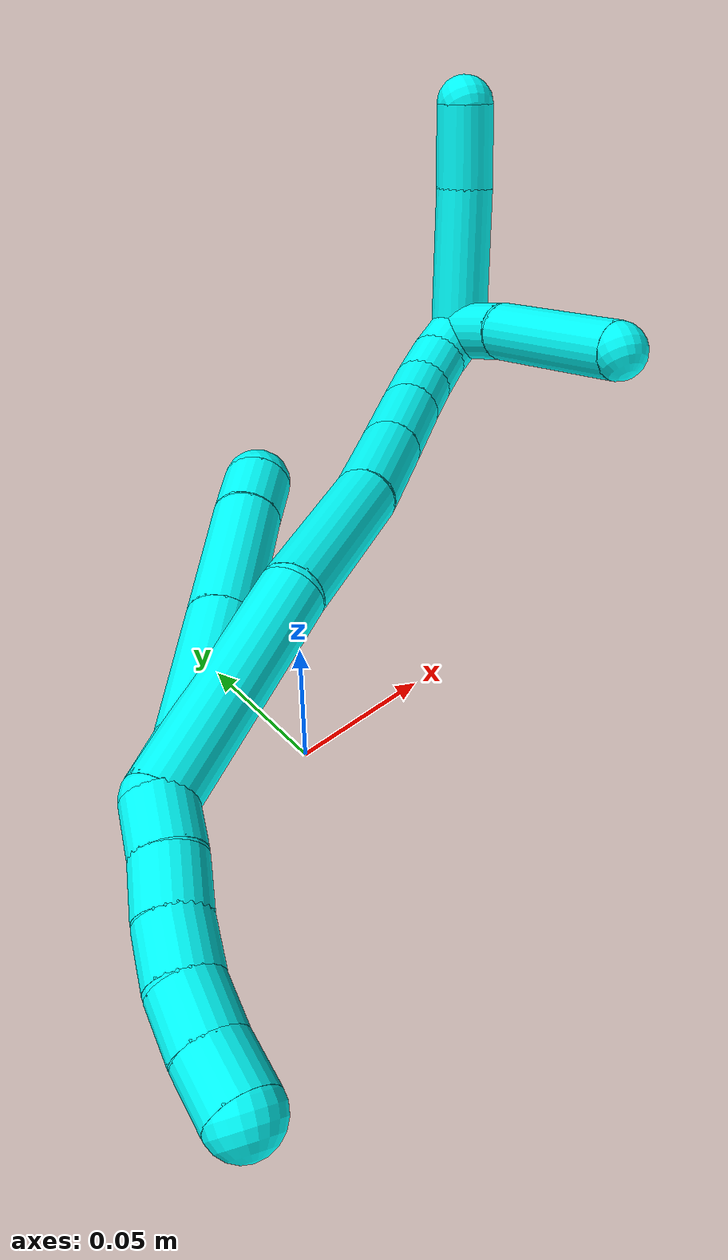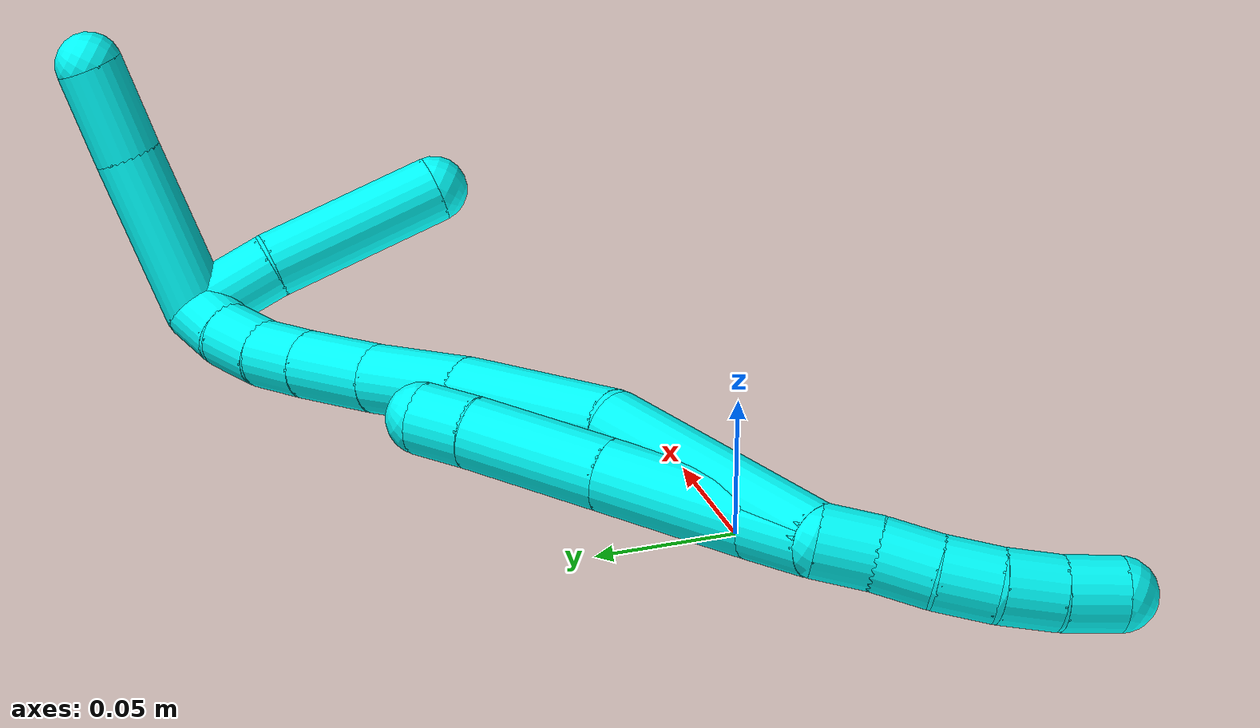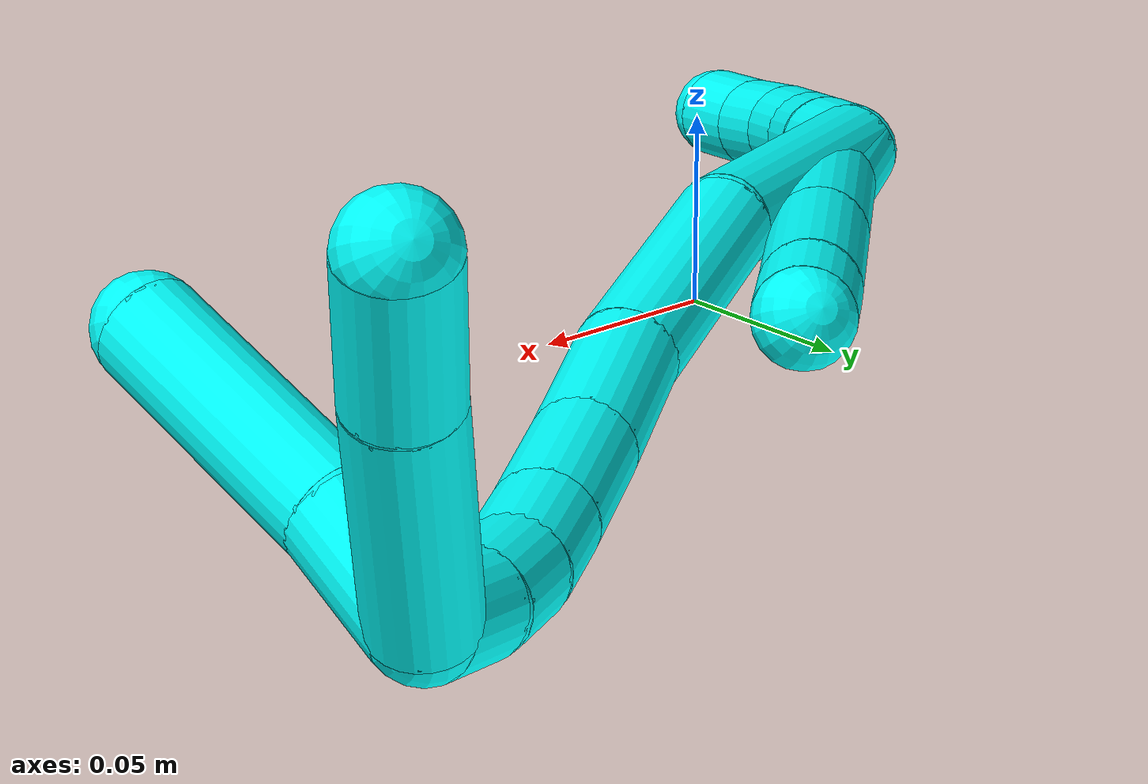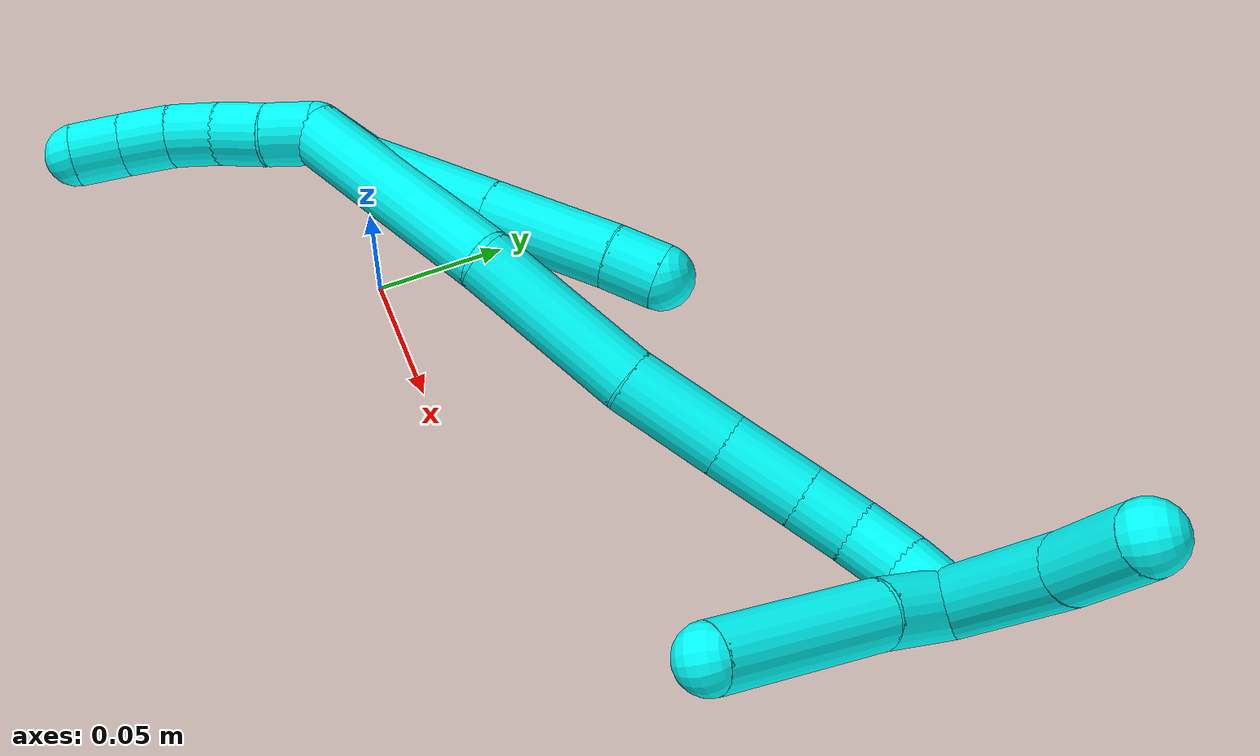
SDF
<sdf version="1.7">
 <world name="default">
  <model name="photoneo_s_sensor">
   <static>1</static>
   <pose>0 0 2 1.57079 1.57079 3.14159</pose>
   <link name="link">
    <inertial><mass>0.1</mass></inertial>
    <sensor name="sensor" type="depth">
     <update_rate>30</update_rate>
     <camera>
      <horizontal_fov>1.22</horizontal_fov>
      <image><width>1920</width><height>1200</height><format>B8G8R8</format></image>
      <clip><near>0.1</near><far>4</far></clip>
      <depth_camera><output>points</output></depth_camera>
     </camera>
     <plugin name="camera_plugin" filename="libgazebo_ros_depth_camera.so">
      <baseline>0.2</baseline>
      <alwaysOn>1</alwaysOn>
      <updateRate>0.0</updateRate>
      <cameraName>camera_ir</cameraName>
      <imageTopicName>/camera/color/image_raw</imageTopicName>
      <cameraInfoTopicName>/camera/color/camera_info</cameraInfoTopicName>
      <depthImageTopicName>/camera/depth/image_raw</depthImageTopicName>
      <depthImageCameraInfoTopicName>/camera/depth/camera_info</depthImageCameraInfoTopicName>
      <pointCloudTopicName>/camera/depth/points</pointCloudTopicName>
      <frameName>fr_optical</frameName>
      <pointCloudCutoff>0.1</pointCloudCutoff>
      <pointCloudCutoffMax>2.0</pointCloudCutoffMax>
      <distortionK1>0</distortionK1>
      <distortionK2>0</distortionK2>
      <distortionK3>0</distortionK3>
      <distortionT1>0</distortionT1>
      <distortionT2>0</distortionT2>
      <CxPrime>0</CxPrime>
      <Cx>0</Cx>
      <Cy>0</Cy>
      <focalLength>0</focalLength>
      <hackBaseline>0</hackBaseline>
     </plugin>
    </sensor>
   </link>
  </model>
  <model name="bin">
   <static>1</static>
   <link name="bottom">
    <collision name="collision-bottom">
     <pose>0 0 -0.01 0 -0 0</pose>
     <geometry><box><size>0.8 0.6 0.02</size></box></geometry>
     <surface>
      <friction><ode><mu>100</mu><mu2>100</mu2></ode></friction>
      <contact><collide_bitmask>65535</collide_bitmask></contact>
     </surface>
    </collision>
   </link>
   <link name="west_wall">
    <collision name="collision-west_wall">
     <pose>-0.41 0 0.1 0 -0 0</pose>
     <geometry><box><size>0.02 0.6 0.2</size></box></geometry>
     <surface>
      <friction><ode><mu>100</mu><mu2>100</mu2></ode></friction>
      <contact><collide_bitmask>65535</collide_bitmask></contact>
     </surface>
    </collision>
   </link>
   <link name="east_wall">
    <collision name="collision-east_wall">
     <pose>0.41 0 0.1 0 -0 0</pose>
     <geometry><box><size>0.02 0.6 0.2</size></box></geometry>
     <surface>
      <friction><ode><mu>100</mu><mu2>100</mu2></ode></friction>
      <contact><collide_bitmask>65535</collide_bitmask></contact>
     </surface>
    </collision>
   </link>
   <link name="south_wall">
    <collision name="collision-south_wall">
     <pose>0 -0.31 0.1 0 -0 0</pose>
     <geometry><box><size>0.8 0.02 0.2</size></box></geometry>
     <surface>
      <friction><ode><mu>100</mu><mu2>100</mu2></ode></friction>
      <contact><collide_bitmask>65535</collide_bitmask></contact>
     </surface>
    </collision>
   </link>
   <link name="north_wall">
    <collision name="collision-north_wall">
     <pose>0 0.31 0.1 0 -0 0</pose>
     <geometry><box><size>0.8 0.02 0.2</size></box></geometry>
     <surface>
      <friction><ode><mu>100</mu><mu2>100</mu2></ode></friction>
      <contact><collide_bitmask>65535</collide_bitmask></contact>
     </surface>
    </collision>
   </link>
  </model>
  <model name="3">
   <static>0</static>
   <link name="3">
    <collision name="collision-cylinder-e_1_2_8">
     <pose>0.008022 0.004103 0.008163 -0.46577 0.720587 -0.178243</pose>
     <geometry><cylinder><radius>0.0125</radius><length>0.024316</length></cylinder></geometry>
     <surface>
      <friction><ode><mu>1.16</mu><mu2>1.16</mu2><slip1>0</slip1><slip2>0</slip2></ode></friction>
      <contact><ode><kp>1e+06</kp><kd>1</kd><max_vel>0</max_vel><min_depth>0.001</min_depth></ode></contact>
     </surface>
    </collision>
    <visual name="visual-cylinder-e_1_2_8">
     <pose>0.008022 0.004103 0.008163 -0.46577 0.720587 -0.178243</pose>
     <geometry><cylinder><radius>0.0125</radius><length>0.024316</length></cylinder></geometry>
     <material><ambient>0.003922 1 0.996078 1</ambient></material>
    </visual>
    <collision name="collision-cylinder-e_2_8_9">
     <pose>0.02905 0.016078 0.038981 -0.334426 0.49686 -0.085581</pose>
     <geometry><cylinder><radius>0.0125</radius><length>0.054566</length></cylinder></geometry>
     <surface>
      <friction><ode><mu>1.16</mu><mu2>1.16</mu2><slip1>0</slip1><slip2>0</slip2></ode></friction>
      <contact><ode><kp>1e+06</kp><kd>1</kd><max_vel>0</max_vel><min_depth>0.001</min_depth></ode></contact>
     </surface>
    </collision>
    <visual name="visual-cylinder-e_2_8_9">
     <pose>0.02905 0.016078 0.038981 -0.334426 0.49686 -0.085581</pose>
     <geometry><cylinder><radius>0.0125</radius><length>0.054566</length></cylinder></geometry>
     <material><ambient>0.003922 1 0.996078 1</ambient></material>
    </visual>
    <collision name="collision-cylinder-e_3_9_10">
     <pose>0.05416 0.031321 0.082715 -0.336379 0.49677 -0.086074</pose>
     <geometry><cylinder><radius>0.0125</radius><length>0.050801</length></cylinder></geometry>
     <surface>
      <friction><ode><mu>1.16</mu><mu2>1.16</mu2><slip1>0</slip1><slip2>0</slip2></ode></friction>
      <contact><ode><kp>1e+06</kp><kd>1</kd><max_vel>0</max_vel><min_depth>0.001</min_depth></ode></contact>
     </surface>
    </collision>
    <visual name="visual-cylinder-e_3_9_10">
     <pose>0.05416 0.031321 0.082715 -0.336379 0.49677 -0.086074</pose>
     <geometry><cylinder><radius>0.0125</radius><length>0.050801</length></cylinder></geometry>
     <material><ambient>0.003922 1 0.996078 1</ambient></material>
    </visual>
    <collision name="collision-cylinder-e_4_10_6">
     <pose>0.071382 0.042004 0.11192 -0.386999 0.527828 -0.1058</pose>
     <geometry><cylinder><radius>0.0125</radius><length>0.020316</length></cylinder></geometry>
     <surface>
      <friction><ode><mu>1.16</mu><mu2>1.16</mu2><slip1>0</slip1><slip2>0</slip2></ode></friction>
      <contact><ode><kp>1e+06</kp><kd>1</kd><max_vel>0</max_vel><min_depth>0.001</min_depth></ode></contact>
     </surface>
    </collision>
    <visual name="visual-cylinder-e_4_10_6">
     <pose>0.071382 0.042004 0.11192 -0.386999 0.527828 -0.1058</pose>
     <geometry><cylinder><radius>0.0125</radius><length>0.020316</length></cylinder></geometry>
     <material><ambient>0.003922 1 0.996078 1</ambient></material>
    </visual>
    <collision name="collision-cylinder-e_1_2_11">
     <pose>-0.001263 -0.002961 -0.009468 2.83848 -0.126634 -0.786958</pose>
     <geometry><cylinder><radius>0.0125</radius><length>0.02</length></cylinder></geometry>
     <surface>
      <friction><ode><mu>1.16</mu><mu2>1.16</mu2><slip1>0</slip1><slip2>0</slip2></ode></friction>
      <contact><ode><kp>1e+06</kp><kd>1</kd><max_vel>0</max_vel><min_depth>0.001</min_depth></ode></contact>
     </surface>
    </collision>
    <visual name="visual-cylinder-e_1_2_11">
     <pose>-0.001263 -0.002961 -0.009468 2.83848 -0.126634 -0.786958</pose>
     <geometry><cylinder><radius>0.0125</radius><length>0.02</length></cylinder></geometry>
     <material><ambient>0.003922 1 0.996078 1</ambient></material>
    </visual>
    <collision name="collision-cylinder-e_2_11_12">
     <pose>-0.004647 -0.008272 -0.028421 2.89876 -0.21377 -1.44256</pose>
     <geometry><cylinder><radius>0.0125</radius><length>0.02</length></cylinder></geometry>
     <surface>
      <friction><ode><mu>1.16</mu><mu2>1.16</mu2><slip1>0</slip1><slip2>0</slip2></ode></friction>
      <contact><ode><kp>1e+06</kp><kd>1</kd><max_vel>0</max_vel><min_depth>0.001</min_depth></ode></contact>
     </surface>
    </collision>
    <visual name="visual-cylinder-e_2_11_12">
     <pose>-0.004647 -0.008272 -0.028421 2.89876 -0.21377 -1.44256</pose>
     <geometry><cylinder><radius>0.0125</radius><length>0.02</length></cylinder></geometry>
     <material><ambient>0.003922 1 0.996078 1</ambient></material>
    </visual>
    <collision name="collision-cylinder-e_3_12_13">
     <pose>-0.00788 -0.013566 -0.047399 2.84083 -0.111374 -0.705051</pose>
     <geometry><cylinder><radius>0.0125</radius><length>0.02</length></cylinder></geometry>
     <surface>
      <friction><ode><mu>1.16</mu><mu2>1.16</mu2><slip1>0</slip1><slip2>0</slip2></ode></friction>
      <contact><ode><kp>1e+06</kp><kd>1</kd><max_vel>0</max_vel><min_depth>0.001</min_depth></ode></contact>
     </surface>
    </collision>
    <visual name="visual-cylinder-e_3_12_13">
     <pose>-0.00788 -0.013566 -0.047399 2.84083 -0.111374 -0.705051</pose>
     <geometry><cylinder><radius>0.0125</radius><length>0.02</length></cylinder></geometry>
     <material><ambient>0.003922 1 0.996078 1</ambient></material>
    </visual>
    <collision name="collision-cylinder-e_4_13_14">
     <pose>-0.008417 -0.019803 -0.066315 2.8054 0.057518 0.335838</pose>
     <geometry><cylinder><radius>0.0125</radius><length>0.02</length></cylinder></geometry>
     <surface>
      <friction><ode><mu>1.16</mu><mu2>1.16</mu2><slip1>0</slip1><slip2>0</slip2></ode></friction>
      <contact><ode><kp>1e+06</kp><kd>1</kd><max_vel>0</max_vel><min_depth>0.001</min_depth></ode></contact>
     </surface>
    </collision>
    <visual name="visual-cylinder-e_4_13_14">
     <pose>-0.008417 -0.019803 -0.066315 2.8054 0.057518 0.335838</pose>
     <geometry><cylinder><radius>0.0125</radius><length>0.02</length></cylinder></geometry>
     <material><ambient>0.003922 1 0.996078 1</ambient></material>
    </visual>
    <collision name="collision-cylinder-e_5_14_5">
     <pose>-0.006522 -0.027184 -0.08477 2.71658 0.132391 0.596181</pose>
     <geometry><cylinder><radius>0.0125</radius><length>0.02</length></cylinder></geometry>
     <surface>
      <friction><ode><mu>1.16</mu><mu2>1.16</mu2><slip1>0</slip1><slip2>0</slip2></ode></friction>
      <contact><ode><kp>1e+06</kp><kd>1</kd><max_vel>0</max_vel><min_depth>0.001</min_depth></ode></contact>
     </surface>
    </collision>
    <visual name="visual-cylinder-e_5_14_5">
     <pose>-0.006522 -0.027184 -0.08477 2.71658 0.132391 0.596181</pose>
     <geometry><cylinder><radius>0.0125</radius><length>0.02</length></cylinder></geometry>
     <material><ambient>0.003922 1 0.996078 1</ambient></material>
    </visual>
    <collision name="collision-cylinder-e_1_2_15">
     <pose>0.032912 0.007093 0.031715 -0.22004 0.791712 -0.092266</pose>
     <geometry><cylinder><radius>0.0125</radius><length>0.092507</length></cylinder></geometry>
     <surface>
      <friction><ode><mu>1.16</mu><mu2>1.16</mu2><slip1>0</slip1><slip2>0</slip2></ode></friction>
      <contact><ode><kp>1e+06</kp><kd>1</kd><max_vel>0</max_vel><min_depth>0.001</min_depth></ode></contact>
     </surface>
    </collision>
    <visual name="visual-cylinder-e_1_2_15">
     <pose>0.032912 0.007093 0.031715 -0.22004 0.791712 -0.092266</pose>
     <geometry><cylinder><radius>0.0125</radius><length>0.092507</length></cylinder></geometry>
     <material><ambient>0.003922 1 0.996078 1</ambient></material>
    </visual>
    <collision name="collision-cylinder-e_2_15_16">
     <pose>0.090485 0.02735 0.084473 -0.55898 0.782181 -0.235584</pose>
     <geometry><cylinder><radius>0.0125</radius><length>0.069978</length></cylinder></geometry>
     <surface>
      <friction><ode><mu>1.16</mu><mu2>1.16</mu2><slip1>0</slip1><slip2>0</slip2></ode></friction>
      <contact><ode><kp>1e+06</kp><kd>1</kd><max_vel>0</max_vel><min_depth>0.001</min_depth></ode></contact>
     </surface>
    </collision>
    <visual name="visual-cylinder-e_2_15_16">
     <pose>0.090485 0.02735 0.084473 -0.55898 0.782181 -0.235584</pose>
     <geometry><cylinder><radius>0.0125</radius><length>0.069978</length></cylinder></geometry>
     <material><ambient>0.003922 1 0.996078 1</ambient></material>
    </visual>
    <collision name="collision-cylinder-e_3_16_17">
     <pose>0.128038 0.049467 0.119134 -0.581645 0.669228 -0.207386</pose>
     <geometry><cylinder><radius>0.0125</radius><length>0.041559</length></cylinder></geometry>
     <surface>
      <friction><ode><mu>1.16</mu><mu2>1.16</mu2><slip1>0</slip1><slip2>0</slip2></ode></friction>
      <contact><ode><kp>1e+06</kp><kd>1</kd><max_vel>0</max_vel><min_depth>0.001</min_depth></ode></contact>
     </surface>
    </collision>
    <visual name="visual-cylinder-e_3_16_17">
     <pose>0.128038 0.049467 0.119134 -0.581645 0.669228 -0.207386</pose>
     <geometry><cylinder><radius>0.0125</radius><length>0.041559</length></cylinder></geometry>
     <material><ambient>0.003922 1 0.996078 1</ambient></material>
    </visual>
    <collision name="collision-cylinder-e_4_17_18">
     <pose>0.15125 0.064908 0.143941 -0.525442 0.673481 -0.187742</pose>
     <geometry><cylinder><radius>0.0125</radius><length>0.033097</length></cylinder></geometry>
     <surface>
      <friction><ode><mu>1.16</mu><mu2>1.16</mu2><slip1>0</slip1><slip2>0</slip2></ode></friction>
      <contact><ode><kp>1e+06</kp><kd>1</kd><max_vel>0</max_vel><min_depth>0.001</min_depth></ode></contact>
     </surface>
    </collision>
    <visual name="visual-cylinder-e_4_17_18">
     <pose>0.15125 0.064908 0.143941 -0.525442 0.673481 -0.187742</pose>
     <geometry><cylinder><radius>0.0125</radius><length>0.033097</length></cylinder></geometry>
     <material><ambient>0.003922 1 0.996078 1</ambient></material>
    </visual>
    <collision name="collision-cylinder-e_5_18_19">
     <pose>0.168515 0.075343 0.162541 -0.489315 0.691011 -0.179244</pose>
     <geometry><cylinder><radius>0.0125</radius><length>0.021789</length></cylinder></geometry>
     <surface>
      <friction><ode><mu>1.16</mu><mu2>1.16</mu2><slip1>0</slip1><slip2>0</slip2></ode></friction>
      <contact><ode><kp>1e+06</kp><kd>1</kd><max_vel>0</max_vel><min_depth>0.001</min_depth></ode></contact>
     </surface>
    </collision>
    <visual name="visual-cylinder-e_5_18_19">
     <pose>0.168515 0.075343 0.162541 -0.489315 0.691011 -0.179244</pose>
     <geometry><cylinder><radius>0.0125</radius><length>0.021789</length></cylinder></geometry>
     <material><ambient>0.003922 1 0.996078 1</ambient></material>
    </visual>
    <collision name="collision-cylinder-e_6_19_20">
     <pose>0.182622 0.081427 0.177207 -0.286684 0.758243 -0.114876</pose>
     <geometry><cylinder><radius>0.0125</radius><length>0.020837</length></cylinder></geometry>
     <surface>
      <friction><ode><mu>1.16</mu><mu2>1.16</mu2><slip1>0</slip1><slip2>0</slip2></ode></friction>
      <contact><ode><kp>1e+06</kp><kd>1</kd><max_vel>0</max_vel><min_depth>0.001</min_depth></ode></contact>
     </surface>
    </collision>
    <visual name="visual-cylinder-e_6_19_20">
     <pose>0.182622 0.081427 0.177207 -0.286684 0.758243 -0.114876</pose>
     <geometry><cylinder><radius>0.0125</radius><length>0.020837</length></cylinder></geometry>
     <material><ambient>0.003922 1 0.996078 1</ambient></material>
    </visual>
    <collision name="collision-cylinder-e_7_20_1">
     <pose>0.197413 0.083942 0.191099 -0.056513 0.853972 -0.025718</pose>
     <geometry><cylinder><radius>0.0125</radius><length>0.020234</length></cylinder></geometry>
     <surface>
      <friction><ode><mu>1.16</mu><mu2>1.16</mu2><slip1>0</slip1><slip2>0</slip2></ode></friction>
      <contact><ode><kp>1e+06</kp><kd>1</kd><max_vel>0</max_vel><min_depth>0.001</min_depth></ode></contact>
     </surface>
    </collision>
    <visual name="visual-cylinder-e_7_20_1">
     <pose>0.197413 0.083942 0.191099 -0.056513 0.853972 -0.025718</pose>
     <geometry><cylinder><radius>0.0125</radius><length>0.020234</length></cylinder></geometry>
     <material><ambient>0.003922 1 0.996078 1</ambient></material>
    </visual>
    <collision name="collision-cylinder-e_1_1_21">
     <pose>0.206721 0.06442 0.222402 0.678761 0.052966 0.018703</pose>
     <geometry><cylinder><radius>0.0125</radius><length>0.063472</length></cylinder></geometry>
     <surface>
      <friction><ode><mu>1.16</mu><mu2>1.16</mu2><slip1>0</slip1><slip2>0</slip2></ode></friction>
      <contact><ode><kp>1e+06</kp><kd>1</kd><max_vel>0</max_vel><min_depth>0.001</min_depth></ode></contact>
     </surface>
    </collision>
    <visual name="visual-cylinder-e_1_1_21">
     <pose>0.206721 0.06442 0.222402 0.678761 0.052966 0.018703</pose>
     <geometry><cylinder><radius>0.0125</radius><length>0.063472</length></cylinder></geometry>
     <material><ambient>0.003922 1 0.996078 1</ambient></material>
    </visual>
    <collision name="collision-cylinder-e_2_21_4">
     <pose>0.208443 0.032685 0.260977 0.70523 0.002308 0.000849</pose>
     <geometry><cylinder><radius>0.0125</radius><length>0.036528</length></cylinder></geometry>
     <surface>
      <friction><ode><mu>1.16</mu><mu2>1.16</mu2><slip1>0</slip1><slip2>0</slip2></ode></friction>
      <contact><ode><kp>1e+06</kp><kd>1</kd><max_vel>0</max_vel><min_depth>0.001</min_depth></ode></contact>
     </surface>
    </collision>
    <visual name="visual-cylinder-e_2_21_4">
     <pose>0.208443 0.032685 0.260977 0.70523 0.002308 0.000849</pose>
     <geometry><cylinder><radius>0.0125</radius><length>0.036528</length></cylinder></geometry>
     <material><ambient>0.003922 1 0.996078 1</ambient></material>
    </visual>
    <collision name="collision-cylinder-e_1_1_22">
     <pose>0.207721 0.0709 0.189125 2.14134 0.166608 0.303244</pose>
     <geometry><cylinder><radius>0.0125</radius><length>0.032332</length></cylinder></geometry>
     <surface>
      <friction><ode><mu>1.16</mu><mu2>1.16</mu2><slip1>0</slip1><slip2>0</slip2></ode></friction>
      <contact><ode><kp>1e+06</kp><kd>1</kd><max_vel>0</max_vel><min_depth>0.001</min_depth></ode></contact>
     </surface>
    </collision>
    <visual name="visual-cylinder-e_1_1_22">
     <pose>0.207721 0.0709 0.189125 2.14134 0.166608 0.303244</pose>
     <geometry><cylinder><radius>0.0125</radius><length>0.032332</length></cylinder></geometry>
     <material><ambient>0.003922 1 0.996078 1</ambient></material>
    </visual>
    <collision name="collision-cylinder-e_2_22_3">
     <pose>0.218319 0.031885 0.159855 2.24985 0.236172 0.486587</pose>
     <geometry><cylinder><radius>0.0125</radius><length>0.067668</length></cylinder></geometry>
     <surface>
      <friction><ode><mu>1.16</mu><mu2>1.16</mu2><slip1>0</slip1><slip2>0</slip2></ode></friction>
      <contact><ode><kp>1e+06</kp><kd>1</kd><max_vel>0</max_vel><min_depth>0.001</min_depth></ode></contact>
     </surface>
    </collision>
    <visual name="visual-cylinder-e_2_22_3">
     <pose>0.218319 0.031885 0.159855 2.24985 0.236172 0.486587</pose>
     <geometry><cylinder><radius>0.0125</radius><length>0.067668</length></cylinder></geometry>
     <material><ambient>0.003922 1 0.996078 1</ambient></material>
    </visual>
    <collision name="collision-sphere-3">
     <pose>0.226235 0.006288 0.139195 0 -0 0</pose>
     <geometry><sphere><radius>0.0125</radius></sphere></geometry>
     <surface>
      <friction><ode><mu>1.16</mu><mu2>1.16</mu2><slip1>0</slip1><slip2>0</slip2></ode></friction>
      <contact><ode><kp>1e+06</kp><kd>1</kd><max_vel>0</max_vel><min_depth>0.001</min_depth></ode></contact>
     </surface>
    </collision>
    <visual name="visual-sphere-3">
     <pose>0.226235 0.006288 0.139195 0 -0 0</pose>
     <geometry><sphere><radius>0.0125</radius></sphere></geometry>
     <material><ambient>0.003922 1 0.996078 1</ambient></material>
    </visual>
    <collision name="collision-sphere-22">
     <pose>0.210402 0.057483 0.180514 0 -0 0</pose>
     <geometry><sphere><radius>0.0125</radius></sphere></geometry>
     <surface>
      <friction><ode><mu>1.16</mu><mu2>1.16</mu2><slip1>0</slip1><slip2>0</slip2></ode></friction>
      <contact><ode><kp>1e+06</kp><kd>1</kd><max_vel>0</max_vel><min_depth>0.001</min_depth></ode></contact>
     </surface>
    </collision>
    <visual name="visual-sphere-22">
     <pose>0.210402 0.057483 0.180514 0 -0 0</pose>
     <geometry><sphere><radius>0.0125</radius></sphere></geometry>
     <material><ambient>0.003922 1 0.996078 1</ambient></material>
    </visual>
    <collision name="collision-sphere-4">
     <pose>0.208485 0.020846 0.274884 0 -0 0</pose>
     <geometry><sphere><radius>0.0125</radius></sphere></geometry>
     <surface>
      <friction><ode><mu>1.16</mu><mu2>1.16</mu2><slip1>0</slip1><slip2>0</slip2></ode></friction>
      <contact><ode><kp>1e+06</kp><kd>1</kd><max_vel>0</max_vel><min_depth>0.001</min_depth></ode></contact>
     </surface>
    </collision>
    <visual name="visual-sphere-4">
     <pose>0.208485 0.020846 0.274884 0 -0 0</pose>
     <geometry><sphere><radius>0.0125</radius></sphere></geometry>
     <material><ambient>0.003922 1 0.996078 1</ambient></material>
    </visual>
    <collision name="collision-sphere-21">
     <pose>0.208401 0.044523 0.247069 0 -0 0</pose>
     <geometry><sphere><radius>0.0125</radius></sphere></geometry>
     <surface>
      <friction><ode><mu>1.16</mu><mu2>1.16</mu2><slip1>0</slip1><slip2>0</slip2></ode></friction>
      <contact><ode><kp>1e+06</kp><kd>1</kd><max_vel>0</max_vel><min_depth>0.001</min_depth></ode></contact>
     </surface>
    </collision>
    <visual name="visual-sphere-21">
     <pose>0.208401 0.044523 0.247069 0 -0 0</pose>
     <geometry><sphere><radius>0.0125</radius></sphere></geometry>
     <material><ambient>0.003922 1 0.996078 1</ambient></material>
    </visual>
    <collision name="collision-sphere-1">
     <pose>0.20504 0.084317 0.197735 0 -0 0</pose>
     <geometry><sphere><radius>0.0125</radius></sphere></geometry>
     <surface>
      <friction><ode><mu>1.16</mu><mu2>1.16</mu2><slip1>0</slip1><slip2>0</slip2></ode></friction>
      <contact><ode><kp>1e+06</kp><kd>1</kd><max_vel>0</max_vel><min_depth>0.001</min_depth></ode></contact>
     </surface>
    </collision>
    <visual name="visual-sphere-1">
     <pose>0.20504 0.084317 0.197735 0 -0 0</pose>
     <geometry><sphere><radius>0.0125</radius></sphere></geometry>
     <material><ambient>0.003922 1 0.996078 1</ambient></material>
    </visual>
    <collision name="collision-sphere-11">
     <pose>-0.002526 -0.005922 -0.018935 0 -0 0</pose>
     <geometry><sphere><radius>0.0125</radius></sphere></geometry>
     <surface>
      <friction><ode><mu>1.16</mu><mu2>1.16</mu2><slip1>0</slip1><slip2>0</slip2></ode></friction>
      <contact><ode><kp>1e+06</kp><kd>1</kd><max_vel>0</max_vel><min_depth>0.001</min_depth></ode></contact>
     </surface>
    </collision>
    <visual name="visual-sphere-11">
     <pose>-0.002526 -0.005922 -0.018935 0 -0 0</pose>
     <geometry><sphere><radius>0.0125</radius></sphere></geometry>
     <material><ambient>0.003922 1 0.996078 1</ambient></material>
    </visual>
    <collision name="collision-sphere-6">
     <pose>0.076498 0.045316 0.120047 0 -0 0</pose>
     <geometry><sphere><radius>0.0125</radius></sphere></geometry>
     <surface>
      <friction><ode><mu>1.16</mu><mu2>1.16</mu2><slip1>0</slip1><slip2>0</slip2></ode></friction>
      <contact><ode><kp>1e+06</kp><kd>1</kd><max_vel>0</max_vel><min_depth>0.001</min_depth></ode></contact>
     </surface>
    </collision>
    <visual name="visual-sphere-6">
     <pose>0.076498 0.045316 0.120047 0 -0 0</pose>
     <geometry><sphere><radius>0.0125</radius></sphere></geometry>
     <material><ambient>0.003922 1 0.996078 1</ambient></material>
    </visual>
    <collision name="collision-sphere-10">
     <pose>0.066266 0.038692 0.103794 0 -0 0</pose>
     <geometry><sphere><radius>0.0125</radius></sphere></geometry>
     <surface>
      <friction><ode><mu>1.16</mu><mu2>1.16</mu2><slip1>0</slip1><slip2>0</slip2></ode></friction>
      <contact><ode><kp>1e+06</kp><kd>1</kd><max_vel>0</max_vel><min_depth>0.001</min_depth></ode></contact>
     </surface>
    </collision>
    <visual name="visual-sphere-10">
     <pose>0.066266 0.038692 0.103794 0 -0 0</pose>
     <geometry><sphere><radius>0.0125</radius></sphere></geometry>
     <material><ambient>0.003922 1 0.996078 1</ambient></material>
    </visual>
    <collision name="collision-sphere-9">
     <pose>0.042055 0.023951 0.061636 0 -0 0</pose>
     <geometry><sphere><radius>0.0125</radius></sphere></geometry>
     <surface>
      <friction><ode><mu>1.16</mu><mu2>1.16</mu2><slip1>0</slip1><slip2>0</slip2></ode></friction>
      <contact><ode><kp>1e+06</kp><kd>1</kd><max_vel>0</max_vel><min_depth>0.001</min_depth></ode></contact>
     </surface>
    </collision>
    <visual name="visual-sphere-9">
     <pose>0.042055 0.023951 0.061636 0 -0 0</pose>
     <geometry><sphere><radius>0.0125</radius></sphere></geometry>
     <material><ambient>0.003922 1 0.996078 1</ambient></material>
    </visual>
    <collision name="collision-sphere-2">
     <geometry><sphere><radius>0.0125</radius></sphere></geometry>
     <surface>
      <friction><ode><mu>1.16</mu><mu2>1.16</mu2><slip1>0</slip1><slip2>0</slip2></ode></friction>
      <contact><ode><kp>1e+06</kp><kd>1</kd><max_vel>0</max_vel><min_depth>0.001</min_depth></ode></contact>
     </surface>
    </collision>
    <visual name="visual-sphere-2">
     <geometry><sphere><radius>0.0125</radius></sphere></geometry>
     <material><ambient>0.003922 1 0.996078 1</ambient></material>
    </visual>
    <collision name="collision-sphere-19">
     <pose>0.175458 0.079288 0.169952 0 -0 0</pose>
     <geometry><sphere><radius>0.0125</radius></sphere></geometry>
     <surface>
      <friction><ode><mu>1.16</mu><mu2>1.16</mu2><slip1>0</slip1><slip2>0</slip2></ode></friction>
      <contact><ode><kp>1e+06</kp><kd>1</kd><max_vel>0</max_vel><min_depth>0.001</min_depth></ode></contact>
     </surface>
    </collision>
    <visual name="visual-sphere-19">
     <pose>0.175458 0.079288 0.169952 0 -0 0</pose>
     <geometry><sphere><radius>0.0125</radius></sphere></geometry>
     <material><ambient>0.003922 1 0.996078 1</ambient></material>
    </visual>
    <collision name="collision-sphere-8">
     <pose>0.016045 0.008206 0.016325 0 -0 0</pose>
     <geometry><sphere><radius>0.0125</radius></sphere></geometry>
     <surface>
      <friction><ode><mu>1.16</mu><mu2>1.16</mu2><slip1>0</slip1><slip2>0</slip2></ode></friction>
      <contact><ode><kp>1e+06</kp><kd>1</kd><max_vel>0</max_vel><min_depth>0.001</min_depth></ode></contact>
     </surface>
    </collision>
    <visual name="visual-sphere-8">
     <pose>0.016045 0.008206 0.016325 0 -0 0</pose>
     <geometry><sphere><radius>0.0125</radius></sphere></geometry>
     <material><ambient>0.003922 1 0.996078 1</ambient></material>
    </visual>
    <collision name="collision-sphere-12">
     <pose>-0.006769 -0.010622 -0.037907 0 -0 0</pose>
     <geometry><sphere><radius>0.0125</radius></sphere></geometry>
     <surface>
      <friction><ode><mu>1.16</mu><mu2>1.16</mu2><slip1>0</slip1><slip2>0</slip2></ode></friction>
      <contact><ode><kp>1e+06</kp><kd>1</kd><max_vel>0</max_vel><min_depth>0.001</min_depth></ode></contact>
     </surface>
    </collision>
    <visual name="visual-sphere-12">
     <pose>-0.006769 -0.010622 -0.037907 0 -0 0</pose>
     <geometry><sphere><radius>0.0125</radius></sphere></geometry>
     <material><ambient>0.003922 1 0.996078 1</ambient></material>
    </visual>
    <collision name="collision-sphere-13">
     <pose>-0.008992 -0.01651 -0.056891 0 -0 0</pose>
     <geometry><sphere><radius>0.0125</radius></sphere></geometry>
     <surface>
      <friction><ode><mu>1.16</mu><mu2>1.16</mu2><slip1>0</slip1><slip2>0</slip2></ode></friction>
      <contact><ode><kp>1e+06</kp><kd>1</kd><max_vel>0</max_vel><min_depth>0.001</min_depth></ode></contact>
     </surface>
    </collision>
    <visual name="visual-sphere-13">
     <pose>-0.008992 -0.01651 -0.056891 0 -0 0</pose>
     <geometry><sphere><radius>0.0125</radius></sphere></geometry>
     <material><ambient>0.003922 1 0.996078 1</ambient></material>
    </visual>
    <collision name="collision-sphere-14">
     <pose>-0.007842 -0.023097 -0.07574 0 -0 0</pose>
     <geometry><sphere><radius>0.0125</radius></sphere></geometry>
     <surface>
      <friction><ode><mu>1.16</mu><mu2>1.16</mu2><slip1>0</slip1><slip2>0</slip2></ode></friction>
      <contact><ode><kp>1e+06</kp><kd>1</kd><max_vel>0</max_vel><min_depth>0.001</min_depth></ode></contact>
     </surface>
    </collision>
    <visual name="visual-sphere-14">
     <pose>-0.007842 -0.023097 -0.07574 0 -0 0</pose>
     <geometry><sphere><radius>0.0125</radius></sphere></geometry>
     <material><ambient>0.003922 1 0.996078 1</ambient></material>
    </visual>
    <collision name="collision-sphere-5">
     <pose>-0.005202 -0.031271 -0.093801 0 -0 0</pose>
     <geometry><sphere><radius>0.0125</radius></sphere></geometry>
     <surface>
      <friction><ode><mu>1.16</mu><mu2>1.16</mu2><slip1>0</slip1><slip2>0</slip2></ode></friction>
      <contact><ode><kp>1e+06</kp><kd>1</kd><max_vel>0</max_vel><min_depth>0.001</min_depth></ode></contact>
     </surface>
    </collision>
    <visual name="visual-sphere-5">
     <pose>-0.005202 -0.031271 -0.093801 0 -0 0</pose>
     <geometry><sphere><radius>0.0125</radius></sphere></geometry>
     <material><ambient>0.003922 1 0.996078 1</ambient></material>
    </visual>
    <collision name="collision-sphere-15">
     <pose>0.065824 0.014187 0.063431 0 -0 0</pose>
     <geometry><sphere><radius>0.0125</radius></sphere></geometry>
     <surface>
      <friction><ode><mu>1.16</mu><mu2>1.16</mu2><slip1>0</slip1><slip2>0</slip2></ode></friction>
      <contact><ode><kp>1e+06</kp><kd>1</kd><max_vel>0</max_vel><min_depth>0.001</min_depth></ode></contact>
     </surface>
    </collision>
    <visual name="visual-sphere-15">
     <pose>0.065824 0.014187 0.063431 0 -0 0</pose>
     <geometry><sphere><radius>0.0125</radius></sphere></geometry>
     <material><ambient>0.003922 1 0.996078 1</ambient></material>
    </visual>
    <collision name="collision-sphere-16">
     <pose>0.115146 0.040513 0.105516 0 -0 0</pose>
     <geometry><sphere><radius>0.0125</radius></sphere></geometry>
     <surface>
      <friction><ode><mu>1.16</mu><mu2>1.16</mu2><slip1>0</slip1><slip2>0</slip2></ode></friction>
      <contact><ode><kp>1e+06</kp><kd>1</kd><max_vel>0</max_vel><min_depth>0.001</min_depth></ode></contact>
     </surface>
    </collision>
    <visual name="visual-sphere-16">
     <pose>0.115146 0.040513 0.105516 0 -0 0</pose>
     <geometry><sphere><radius>0.0125</radius></sphere></geometry>
     <material><ambient>0.003922 1 0.996078 1</ambient></material>
    </visual>
    <collision name="collision-sphere-17">
     <pose>0.140929 0.05842 0.132751 0 -0 0</pose>
     <geometry><sphere><radius>0.0125</radius></sphere></geometry>
     <surface>
      <friction><ode><mu>1.16</mu><mu2>1.16</mu2><slip1>0</slip1><slip2>0</slip2></ode></friction>
      <contact><ode><kp>1e+06</kp><kd>1</kd><max_vel>0</max_vel><min_depth>0.001</min_depth></ode></contact>
     </surface>
    </collision>
    <visual name="visual-sphere-17">
     <pose>0.140929 0.05842 0.132751 0 -0 0</pose>
     <geometry><sphere><radius>0.0125</radius></sphere></geometry>
     <material><ambient>0.003922 1 0.996078 1</ambient></material>
    </visual>
    <collision name="collision-sphere-18">
     <pose>0.161572 0.071397 0.155131 0 -0 0</pose>
     <geometry><sphere><radius>0.0125</radius></sphere></geometry>
     <surface>
      <friction><ode><mu>1.16</mu><mu2>1.16</mu2><slip1>0</slip1><slip2>0</slip2></ode></friction>
      <contact><ode><kp>1e+06</kp><kd>1</kd><max_vel>0</max_vel><min_depth>0.001</min_depth></ode></contact>
     </surface>
    </collision>
    <visual name="visual-sphere-18">
     <pose>0.161572 0.071397 0.155131 0 -0 0</pose>
     <geometry><sphere><radius>0.0125</radius></sphere></geometry>
     <material><ambient>0.003922 1 0.996078 1</ambient></material>
    </visual>
    <collision name="collision-sphere-20">
     <pose>0.189786 0.083566 0.184463 0 -0 0</pose>
     <geometry><sphere><radius>0.0125</radius></sphere></geometry>
     <surface>
      <friction><ode><mu>1.16</mu><mu2>1.16</mu2><slip1>0</slip1><slip2>0</slip2></ode></friction>
      <contact><ode><kp>1e+06</kp><kd>1</kd><max_vel>0</max_vel><min_depth>0.001</min_depth></ode></contact>
     </surface>
    </collision>
    <visual name="visual-sphere-20">
     <pose>0.189786 0.083566 0.184463 0 -0 0</pose>
     <geometry><sphere><radius>0.0125</radius></sphere></geometry>
     <material><ambient>0.003922 1 0.996078 1</ambient></material>
    </visual>
    <inertial>
     <pose>0.105075 0.031373 0.099088 0 -0 0</pose>
     <mass>0.75</mass>
     <inertia><ixx>0.000195</ixx><ixy>0</ixy><ixz>0</ixz><iyy>0.000141</iyy><iyz>0</iyz><izz>-8e-05</izz></inertia>
    </inertial>
   </link>
   <pose>-0.059544 -0.003793 0.028047 -1.07212 0.160553 -0.306305</pose>
  </model>
 </world>
</sdf>
